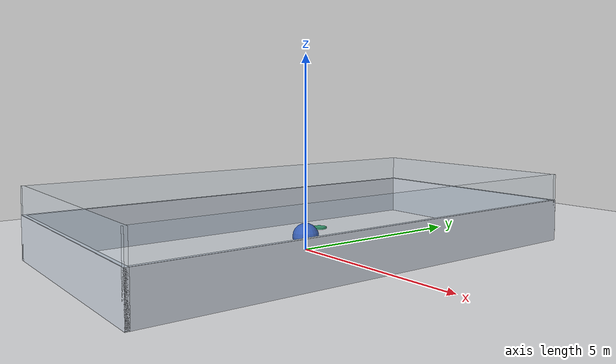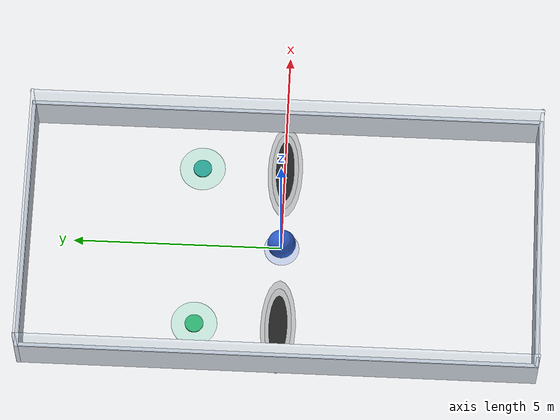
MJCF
<mujoco model="corridor_two_point_masses_2d_visual_tighter">
  <compiler angle="radian" autolimits="true"/>
  <option timestep="0.05" gravity="0 0 0" integrator="Euler"/>

  <statistic center="0 0 0.6" extent="8.2"/>

  <asset>
    <texture name="sky" type="skybox" builtin="flat" rgb1="1 1 1" width="64" height="64"/>
    <texture
        name="floor_tex"
        type="2d"
        builtin="checker"
        width="512"
        height="512"
        rgb1="0.965 0.965 0.970"
        rgb2="0.905 0.915 0.930"/>
    <material
        name="floor_mat"
        texture="floor_tex"
        texrepeat="6 12"
        texuniform="true"
        reflectance="0.06"
        shininess="0.05"
        specular="0.05"/>
    <material name="wall_mat" rgba="0.82 0.85 0.89 1" specular="0.10" shininess="0.25"/>
    <material name="glass_mat" rgba="0.70 0.82 0.92 0.18" specular="0.25" shininess="0.40"/>

    <material name="obstacle_outer_mat" rgba="0 0 0 0.13"/>
    <material name="obstacle_mid_mat" rgba="0 0 0 0.24"/>
    <material name="obstacle_core_mat" rgba="0 0 0 0.82" specular="0.08" shininess="0.05"/>

    <material name="agent1_mat" rgba="0.18 0.36 0.78 1" specular="0.40" shininess="0.65"/>
    <material name="agent2_mat" rgba="0.88 0.40 0.22 1" specular="0.40" shininess="0.65"/>
    <material name="agent1_shadow_mat" rgba="0.18 0.36 0.78 0.20"/>
    <material name="agent2_shadow_mat" rgba="0.88 0.40 0.22 0.20"/>

    <material name="goal1_mat" rgba="0.18 0.70 0.45 0.95" specular="0.20" shininess="0.40"/>
    <material name="goal2_mat" rgba="0.15 0.64 0.58 0.95" specular="0.20" shininess="0.40"/>
    <material name="goal_zone_mat" rgba="0.23 0.83 0.58 0.18"/>
  </asset>

  <default>
    <joint type="slide" limited="false" damping="1.0" armature="0.0"/>

    <geom contype="0" conaffinity="0"/>
    <motor ctrllimited="true" ctrlrange="-5 5"/>
    <default class="agent">
      <geom type="sphere" size="0.34"/>
    </default>
  </default>

  <worldbody>
    <light name="key" pos="0 -5 9" diffuse="0.95 0.95 0.95" specular="0.20 0.20 0.20"/>
    <light name="fill" pos="0 6 7" diffuse="0.55 0.55 0.55" specular="0.08 0.08 0.08"/>

    <camera name="top_down" mode="fixed" pos="0 -0.05 13.0" xyaxes="1 0 0 0 1 0"/>
    <camera name="angled" mode="fixed" pos="0 -8.0 7.5" xyaxes="1 0 0 0 0.66 0.75"/>

    <geom name="floor" type="plane" pos="0 0 0" size="9 14 0.1" material="floor_mat"/>

    <geom name="wall_left_core" type="box" pos="-3.10 0 0.55" size="0.05 6.15 0.55" material="wall_mat"/>
    <geom name="wall_right_core" type="box" pos="3.10 0 0.55" size="0.05 6.15 0.55" material="wall_mat"/>
    <geom name="wall_bottom_core" type="box" pos="0 -6.10 0.55" size="3.15 0.05 0.55" material="wall_mat"/>
    <geom name="wall_top_core" type="box" pos="0 6.10 0.55" size="3.15 0.05 0.55" material="wall_mat"/>

    <geom name="wall_left_glass" type="box" pos="-3.10 0 1.45" size="0.035 6.15 0.35" material="glass_mat"/>
    <geom name="wall_right_glass" type="box" pos="3.10 0 1.45" size="0.035 6.15 0.35" material="glass_mat"/>
    <geom name="wall_bottom_glass" type="box" pos="0 -6.10 1.45" size="3.15 0.035 0.35" material="glass_mat"/>
    <geom name="wall_top_glass" type="box" pos="0 6.10 1.45" size="3.15 0.035 0.35" material="glass_mat"/>

    <geom name="goal_agent1_zone" type="cylinder" pos="-2 2 0.006" size="0.55 0.006" material="goal_zone_mat"/>
    <geom name="goal_agent1_core" type="cylinder" pos="-2 2 0.022" size="0.22 0.022" material="goal1_mat"/>
    <geom name="goal_agent2_zone" type="cylinder" pos="2 2 0.006" size="0.55 0.006" material="goal_zone_mat"/>
    <geom name="goal_agent2_core" type="cylinder" pos="2 2 0.022" size="0.22 0.022" material="goal2_mat"/>

    <geom name="obst_left_outer" type="ellipsoid" pos="-2.0 0 0.014" size="1.18 0.42 0.014" material="obstacle_outer_mat"/>
    <geom name="obst_left_mid" type="ellipsoid" pos="-2.0 0 0.030" size="0.98 0.32 0.020" material="obstacle_mid_mat"/>
    <geom name="obst_left_core" type="ellipsoid" pos="-2.0 0 0.056" size="0.78 0.22 0.035" material="obstacle_core_mat"/>

    <geom name="obst_right_outer" type="ellipsoid" pos="2.0 0 0.014" size="1.18 0.42 0.014" material="obstacle_outer_mat"/>
    <geom name="obst_right_mid" type="ellipsoid" pos="2.0 0 0.030" size="0.98 0.32 0.020" material="obstacle_mid_mat"/>
    <geom name="obst_right_core" type="ellipsoid" pos="2.0 0 0.056" size="0.78 0.22 0.035" material="obstacle_core_mat"/>

    <body name="agent1" pos="0 0 0.34">
      <inertial pos="0 0 0" mass="1.0" diaginertia="0.01 0.01 0.01"/>
      <joint name="a1_x" axis="1 0 0"/>
      <joint name="a1_y" axis="0 1 0"/>
      <geom name="a1_shadow" type="cylinder" pos="0 0 -0.332" size="0.42 0.004" material="agent1_shadow_mat"/>
      <geom class="agent" name="a1_geom" material="agent1_mat"/>
      <site name="a1_center" pos="0 0 0" size="0.045" rgba="1 1 1 0.45"/>
    </body>

    <body name="agent2" pos="0 0 0.34">
      <inertial pos="0 0 0" mass="1.0" diaginertia="0.01 0.01 0.01"/>
      <joint name="a2_x" axis="1 0 0"/>
      <joint name="a2_y" axis="0 1 0"/>
      <geom name="a2_shadow" type="cylinder" pos="0 0 -0.332" size="0.42 0.004" material="agent2_shadow_mat"/>
      <geom class="agent" name="a2_geom" material="agent2_mat"/>
      <site name="a2_center" pos="0 0 0" size="0.045" rgba="1 1 1 0.45"/>
    </body>
  </worldbody>

  <actuator>
    <motor name="u_a1_x" joint="a1_x" gear="1"/>
    <motor name="u_a1_y" joint="a1_y" gear="1"/>
    <motor name="u_a2_x" joint="a2_x" gear="1"/>
    <motor name="u_a2_y" joint="a2_y" gear="1"/>
  </actuator>
</mujoco>
